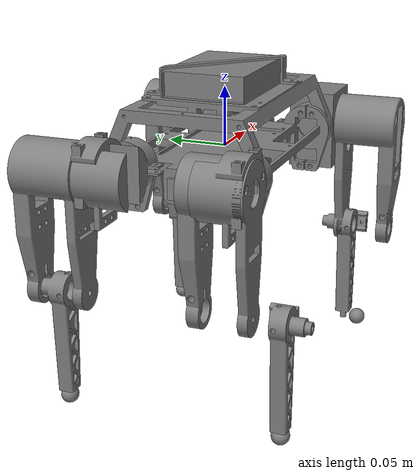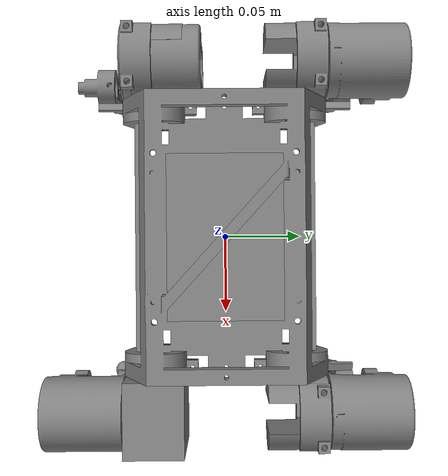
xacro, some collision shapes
<?xml version="1.0"?>
<robot name="qronk" xmlns:xacro="http://www.ros.org/wiki/xacro">

    <link name="base_link" />

    <xacro:include filename="common_properties.xacro" />

    <xacro:include filename="chassis.xacro" />

    <xacro:include filename="leg_FR.xacro" />
    <xacro:include filename="leg_FL.xacro" />
    <xacro:include filename="leg_BR.xacro" />
    <xacro:include filename="leg_BL.xacro" />

    <xacro:include filename="qronk_gazebo.xacro" />

</robot>

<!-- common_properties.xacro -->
<robot xmlns:xacro="http://www.ros.org/wiki/xacro">

    <!-- RVIZ COLORS -->

    <material name="red">
        <color rgba="0.5 0 0 1" />
    </material>

    <material name="green">
        <color rgba="0 0.5 0 1" />
    </material>

    <material name="blue">
        <color rgba="0 0 0.5 1" />
    </material>

    <material name="grey">
        <color rgba="0.5 0.5 0.5 1" />
    </material>

    <!-- XACRO INERTIA MACROS -->

    <xacro:macro name="box_inertia" params="m l w h xyz rpy">
        <inertial>
            <origin xyz="${xyz}" rpy="${rpy}" />
            <mass value="${m}" />
            <inertia ixx="${m * (l**2 + h**2) / 12.0}" ixy="0" ixz="0"
                iyy="${m * (w**2 + l**2) / 12.0}" iyz="0"
                izz="${m * (h**2 + w**2) / 12.0}" />
        </inertial>
    </xacro:macro>

    <xacro:macro name="sphere_inertia" params="m r xyz rpy">
        <inertial>
            <origin xyz="${xyz}" rpy="${rpy}" />
            <mass value="${m}" />
            <inertia ixx="${2 * m * r**2 / 5.0}" ixy="0" ixz="0"
                iyy="${2 * m * r**2 / 5.0}" iyz="0"
                izz="${2 * m * r**2 / 5.0}" />
        </inertial>
    </xacro:macro>

</robot>

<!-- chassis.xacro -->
<robot xmlns:xacro="http://www.ros.org/wiki/xacro">
<!--Updated all model xacros to be compatible with rvis and gazebo-->
    <joint name="base_chassis_joint" type="fixed">

        <parent link="base_link" />
        <child link="chassis_link" />
        <origin xyz="0 0 0" rpy="0 0 0" />

    </joint>

    <link name="chassis_link">

        <visual>
            <geometry>
                <mesh filename="file://$(find qronk_description)/meshes/chassis.stl"
                    scale="0.001 0.001 0.001" />
            </geometry>
            <origin xyz="0 0 0" rpy="0 0 0" />
            <material name="grey" />
        </visual>

        <collision>
            <geometry>
                <box size="0.185 0.136835 0.084144" />
            </geometry>
            <origin xyz="0 0 0.003928" rpy="0 0 0" />
        </collision>

        <xacro:box_inertia m="0.3" l="0.185" w="0.137" h="0.084"
            xyz="0 0 0.004" rpy="0 0 0" />

    </link>

    <joint name="chassis_battery_joint" type="fixed">

        <parent link="chassis_link" />
        <child link="battery_link" />
        <origin xyz="0 0 -0.0305" rpy="0 0 0" />

    </joint>

    <link name="battery_link">

        <visual>
            <geometry>
                <mesh filename="file://$(find qronk_description)/meshes/battery.stl"
                    scale="0.001 0.001 0.001" />
            </geometry>
            <origin xyz="-0.069 -0.0225 0" rpy="0 0 0" />
            <material name="grey" />
        </visual>

        <collision>
            <geometry>
                <box size="0.138 0.045 0.018" />
            </geometry>
            <origin xyz="0 0 0.009" rpy="0 0 0" />
        </collision>

        <xacro:box_inertia m="0.35" l="0.138" w="0.045" h="0.018"
            xyz="0 0 0.009" rpy="0 0 0" />

    </link>

    <joint name="chassis_raspberry_joint" type="fixed">

        <parent link="chassis_link" />
        <child link="raspberry_link" />
        <origin xyz="0 0 0.044" rpy="0 0 0" />

    </joint>

    <link name="raspberry_link">

        <visual>
            <geometry>
                <mesh filename="file://$(find qronk_description)/meshes/raspberry.stl"
                    scale="0.001 0.001 0.001" />
            </geometry>
            <origin xyz="-0.05 -0.035 0" rpy="0 0 0" />
            <material name="grey" />
        </visual>

        <collision>
            <geometry>
                <box size="0.1 0.07 0.025" />
            </geometry>
            <origin xyz="0 0 0.0125" rpy="0 0 0" />
        </collision>

        <xacro:box_inertia m="0.15" l="0.1" w="0.07" h="0.025"
            xyz="0 0 0.0125" rpy="0 0 0" />

    </link>

</robot>

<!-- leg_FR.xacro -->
<robot xmlns:xacro="http://www.ros.org/wiki/xacro">

    <joint name="chassis_shoulder_FR_joint" type="revolute">

        <parent link="chassis_link" />
        <child link="shoulder_FR_link" />
        <origin xyz="0.0885 -0.047417 0.000052" rpy="0 0 0" />
        <axis xyz="1 0 0" />
        <limit lower="${-pi}" upper="${pi}" effort="100" velocity="100" />

    </joint>

    <link name="shoulder_FR_link">

        <visual>
            <geometry>
                <mesh filename="file://$(find qronk_description)/meshes/shoulder_FR.stl"
                    scale="0.001 0.001 0.001" />
            </geometry>
            <origin xyz="0 0 0" rpy="0 0 0" />
            <material name="grey" />
        </visual>

        <collision>
            <geometry>
                <box size="0.05 0.04 0.068" />
            </geometry>
            <origin xyz="0.03 0 -0.005" rpy="0 0 0" />
        </collision>

        <xacro:box_inertia m="0.1" l="0.05" w="0.04" h="0.068"
            xyz="0.03 0 -0.005" rpy="0 0 0" />

    </link>

    <joint name="shoulder_upper_leg_FR_joint" type="revolute">

        <parent link="shoulder_FR_link" />
        <child link="upper_leg_FR_link" />
        <origin xyz="0.03 -0.0214 -0.00002" rpy="0 0 0" />
        <axis xyz="0 1 0" />
        <limit lower="${-pi}" upper="${pi}" effort="100" velocity="100" />

    </joint>

    <link name="upper_leg_FR_link">

        <visual>
            <geometry>
                <mesh filename="file://$(find qronk_description)//meshes/upper_leg_FR.stl"
                    scale="0.001 0.001 0.001" />
            </geometry>
            <origin xyz="0 0 0" rpy="0 0 0" />
            <material name="grey" />
        </visual>

        <collision>
            <geometry>
                <box size="0.05 0.0532 0.137" />
            </geometry>
            <origin xyz="0 -0.0266 -0.0435" rpy="0 0 0" />
        </collision>

        <xacro:box_inertia m="0.1" l="0.05" w="0.0532" h="0.0137"
            xyz="0 -0.0266 -0.0435" rpy="0 0 0" />

    </link>

    <joint name="upper_leg_lower_leg_FR_joint" type="revolute">

        <parent link="upper_leg_FR_link" />
        <child link="lower_leg_FR_link" />
        <origin xyz="0 -0.016349 -0.098459" rpy="0 0 0" />
        <axis xyz="0 1 0" />
        <limit lower="${-pi}" upper="${pi}" effort="100" velocity="100" />

    </joint>

    <link name="lower_leg_FR_link">

        <visual>
            <geometry>
                <mesh filename="file://$(find qronk_description)//meshes/lower_leg_FR.stl"
                    scale="0.001 0.001 0.001" />
            </geometry>
            <origin xyz="0 0 0" rpy="0 0 0" />
            <material name="grey" />
        </visual>

        <collision>
            <geometry>
                <box size="0.028 0.0134 0.102" />
            </geometry>
            <origin xyz="0 -0.0067 -0.037" rpy="0 0 0" />
        </collision>

        <xacro:box_inertia m="0.1" l="0.028" w="0.0134" h="0.102"
            xyz="0 -0.0067 -0.037" rpy="0 0 0" />

    </link>

    <joint name="lower_leg_foot_FR_joint" type="fixed">

        <parent link="lower_leg_FR_link" />
        <child link="foot_FR_link" />
        <origin xyz="0 -0.0066835 -0.09416" rpy="0 0 0" />

    </joint>

    <link name="foot_FR_link">

        <visual>
            <geometry>
                <sphere radius="0.0075" />
            </geometry>
            <origin xyz="0 0 0" rpy="0 0 0" />
            <material name="grey" />
        </visual>

        <collision>
            <geometry>
                <sphere radius="0.0075" />
            </geometry>
            <origin xyz="0 0 0" rpy="0 0 0" />
        </collision>

        <xacro:sphere_inertia m="0.05" r="0.0075"
            xyz="0 0 0" rpy="0 0 0" />

    </link>

</robot>

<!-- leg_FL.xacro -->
<robot xmlns:xacro="http://www.ros.org/wiki/xacro">

    <joint name="chassis_shoulder_FL_joint" type="revolute">

        <parent link="chassis_link" />
        <child link="shoulder_FL_link" />
        <origin xyz="0.0885 0.047417 0.000052" rpy="0 0 0" />
        <axis xyz="1 0 0" />
        <limit lower="${-pi}" upper="${pi}" effort="100" velocity="100" />

    </joint>

    <link name="shoulder_FL_link">

        <visual>
            <geometry>
                <mesh filename="file://$(find qronk_description)/meshes/shoulder_FL.stl"
                    scale="0.001 0.001 0.001" />
            </geometry>
            <origin xyz="0 0 0" rpy="0 0 0" />
            <material name="grey" />
        </visual>

        <collision>
            <geometry>
                <box size="0.05 0.04 0.068" />
            </geometry>
            <origin xyz="0.03 -0 -0.005" rpy="0 0 0" />
        </collision>

        <xacro:box_inertia m="0.1" l="0.05" w="0.04" h="0.068"
            xyz="0.03 -0 -0.005" rpy="0 0 0" />

    </link>

    <joint name="shoulder_upper_leg_FL_joint" type="revolute">

        <parent link="shoulder_FL_link" />
        <child link="upper_leg_FL_link" />
        <origin xyz="0.03 0.0214 -0.00002" rpy="0 0 0" />
        <axis xyz="0 1 0" />
        <limit lower="${-pi}" upper="${pi}" effort="100" velocity="100" />

    </joint>

    <link name="upper_leg_FL_link">

        <visual>
            <geometry>
                <mesh filename="file://$(find qronk_description)/meshes/upper_leg_FL.stl"
                    scale="0.001 0.001 0.001" />
            </geometry>
            <origin xyz="0 0 0" rpy="0 0 0" />
            <material name="grey" />
        </visual>

        <collision>
            <geometry>
                <box size="0.05 0.0532 0.137" />
            </geometry>
            <origin xyz="0 0.0266 -0.0435" rpy="0 0 0" />
        </collision>

        <xacro:box_inertia m="0.1" l="0.05" w="0.0532" h="0.0137"
            xyz="0 0.0266 -0.0435" rpy="0 0 0" />

    </link>

    <joint name="upper_leg_lower_leg_FL_joint" type="revolute">

        <parent link="upper_leg_FL_link" />
        <child link="lower_leg_FL_link" />
        <origin xyz="0 0.016349 -0.098459" rpy="0 0 0" />
        <axis xyz="0 1 0" />
        <limit lower="${-pi}" upper="${pi}" effort="100" velocity="100" />

    </joint>

    <link name="lower_leg_FL_link">

        <visual>
            <geometry>
                <mesh filename="file://$(find qronk_description)/meshes/lower_leg_FL.stl"
                    scale="0.001 0.001 0.001" />
            </geometry>
            <origin xyz="0 0 0" rpy="0 0 0" />
            <material name="grey" />
        </visual>

        <collision>
            <geometry>
                <box size="0.028 0.0134 0.102" />
            </geometry>
            <origin xyz="0 0.0067 -0.037" rpy="0 0 0" />
        </collision>

        <xacro:box_inertia m="0.1" l="0.028" w="0.0134" h="0.102"
            xyz="0 0.0067 -0.037" rpy="0 0 0" />

    </link>

    <joint name="lower_leg_foot_FL_joint" type="fixed">

        <parent link="lower_leg_FL_link" />
        <child link="foot_FL_link" />
        <origin xyz="0 0.0066835 -0.09416" rpy="0 0 0" />

    </joint>

    <link name="foot_FL_link">

        <visual>
            <geometry>
                <sphere radius="0.0075" />
            </geometry>
            <origin xyz="0 0 0" rpy="0 0 0" />
            <material name="grey" />
        </visual>

        <collision>
            <geometry>
                <sphere radius="0.0075" />
            </geometry>
            <origin xyz="0 0 0" rpy="0 0 0" />
        </collision>

        <xacro:sphere_inertia m="0.05" r="0.0075"
            xyz="0 0 0" rpy="0 0 0" />

    </link>

</robot>

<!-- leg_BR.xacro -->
<robot xmlns:xacro="http://www.ros.org/wiki/xacro">

    <joint name="chassis_shoulder_BR_joint" type="revolute">

        <parent link="chassis_link" />
        <child link="shoulder_BR_link" />
        <origin xyz="-0.0885 -0.047417 0.000052" rpy="0 0 0" />
        <axis xyz="1 0 0" />
        <limit lower="${-pi}" upper="${pi}" effort="100" velocity="100" />

    </joint>

    <link name="shoulder_BR_link">

        <visual>
            <geometry>
                <mesh filename="file://$(find qronk_description)/meshes/shoulder_BR.stl"
                    scale="0.001 0.001 0.001" />
            </geometry>
            <origin xyz="0 0 0" rpy="0 0 0" />
            <material name="grey" />
        </visual>

        <collision>
            <geometry>
                <box size="0.05 0.04 0.068" />
            </geometry>
            <origin xyz="-0.03 0 -0.005" rpy="0 0 0" />
        </collision>

        <xacro:box_inertia m="0.1" l="0.05" w="0.04" h="0.068"
            xyz="-0.03 0 -0.005" rpy="0 0 0" />

    </link>

    <joint name="shoulder_upper_leg_BR_joint" type="revolute">

        <parent link="shoulder_BR_link" />
        <child link="upper_leg_BR_link" />
        <origin xyz="-0.03 -0.0214 -0.00002" rpy="0 0 0" />
        <axis xyz="0 1 0" />
        <limit lower="${-pi}" upper="${pi}" effort="100" velocity="100" />

    </joint>

    <link name="upper_leg_BR_link">

        <visual>
            <geometry>
                <mesh filename="file://$(find qronk_description)/meshes/upper_leg_BR.stl"
                    scale="0.001 0.001 0.001" />
            </geometry>
            <origin xyz="0 0 0" rpy="0 0 0" />
            <material name="grey" />
        </visual>

        <collision>
            <geometry>
                <box size="0.05 0.0532 0.137" />
            </geometry>
            <origin xyz="-0 -0.0266 -0.0435" rpy="0 0 0" />
        </collision>

        <xacro:box_inertia m="0.1" l="0.05" w="0.0532" h="0.0137"
            xyz="-0 -0.0266 -0.0435" rpy="0 0 0" />

    </link>

    <joint name="upper_leg_lower_leg_BR_joint" type="revolute">

        <parent link="upper_leg_BR_link" />
        <child link="lower_leg_BR_link" />
        <origin xyz="-0 -0.016349 -0.098459" rpy="0 0 0" />
        <axis xyz="0 1 0" />
        <limit lower="${-pi}" upper="${pi}" effort="100" velocity="100" />

    </joint>

    <link name="lower_leg_BR_link">

        <visual>
            <geometry>
                <mesh filename="file://$(find qronk_description)/meshes/lower_leg_BR.stl"
                    scale="0.001 0.001 0.001" />
            </geometry>
            <origin xyz="0 0 0" rpy="0 0 0" />
            <material name="grey" />
        </visual>

        <collision>
            <geometry>
                <box size="0.028 0.0134 0.102" />
            </geometry>
            <origin xyz="-0 -0.0067 -0.037" rpy="0 0 0" />
        </collision>

        <xacro:box_inertia m="0.1" l="0.028" w="0.0134" h="0.102"
            xyz="-0 -0.0067 -0.037" rpy="0 0 0" />

    </link>

    <joint name="lower_leg_foot_BR_joint" type="fixed">

        <parent link="lower_leg_BR_link" />
        <child link="foot_BR_link" />
        <origin xyz="-0 -0.0066835 -0.09416" rpy="0 0 0" />

    </joint>

    <link name="foot_BR_link">

        <visual>
            <geometry>
                <sphere radius="0.0075" />
            </geometry>
            <origin xyz="0 0 0" rpy="0 0 0" />
            <material name="grey" />
        </visual>

        <collision>
            <geometry>
                <sphere radius="0.0075" />
            </geometry>
            <origin xyz="0 0 0" rpy="0 0 0" />
        </collision>

        <xacro:sphere_inertia m="0.05" r="0.0075"
            xyz="0 0 0" rpy="0 0 0" />

    </link>

</robot>

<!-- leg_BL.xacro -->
<robot xmlns:xacro="http://www.ros.org/wiki/xacro">

    <joint name="chassis_shoulder_BL_joint" type="revolute">

        <parent link="chassis_link" />
        <child link="shoulder_BL_link" />
        <origin xyz="-0.0885 0.047417 0.000052" rpy="0 0 0" />
        <axis xyz="1 0 0" />
        <limit lower="${-pi}" upper="${pi}" effort="100" velocity="100" />

    </joint>

    <link name="shoulder_BL_link">

        <visual>
            <geometry>
                <mesh filename="file://$(find qronk_description)/meshes/shoulder_BL.stl"
                    scale="0.001 0.001 0.001" />
            </geometry>
            <origin xyz="0 0 0" rpy="0 0 0" />
            <material name="grey" />
        </visual>

        <collision>
            <geometry>
                <box size="0.05 0.04 0.068" />
            </geometry>
            <origin xyz="-0.03 -0 -0.005" rpy="0 0 0" />
        </collision>

        <xacro:box_inertia m="0.1" l="0.05" w="0.04" h="0.068"
            xyz="-0.03 -0 -0.005" rpy="0 0 0" />

    </link>

    <joint name="shoulder_upper_leg_BL_joint" type="revolute">

        <parent link="shoulder_BL_link" />
        <child link="upper_leg_BL_link" />
        <origin xyz="-0.03 0.0214 -0.00002" rpy="0 0 0" />
        <axis xyz="0 1 0" />
        <limit lower="${-pi}" upper="${pi}" effort="100" velocity="100" />

    </joint>

    <link name="upper_leg_BL_link">

        <visual>
            <geometry>
                <mesh filename="file://$(find qronk_description)/meshes/upper_leg_BL.stl"
                    scale="0.001 0.001 0.001" />
            </geometry>
            <origin xyz="0 0 0" rpy="0 0 0" />
            <material name="grey" />
        </visual>

        <collision>
            <geometry>
                <box size="0.05 0.0532 0.137" />
            </geometry>
            <origin xyz="-0 0.0266 -0.0435" rpy="0 0 0" />
        </collision>

        <xacro:box_inertia m="0.1" l="0.05" w="0.0532" h="0.0137"
            xyz="-0 0.0266 -0.0435" rpy="0 0 0" />

    </link>

    <joint name="upper_leg_lower_leg_BL_joint" type="revolute">

        <parent link="upper_leg_BL_link" />
        <child link="lower_leg_BL_link" />
        <origin xyz="-0 0.016349 -0.098459" rpy="0 0 0" />
        <axis xyz="0 1 0" />
        <limit lower="${-pi}" upper="${pi}" effort="100" velocity="100" />

    </joint>

    <link name="lower_leg_BL_link">

        <visual>
            <geometry>
                <mesh filename="file://$(find qronk_description)/meshes/lower_leg_BL.stl"
                    scale="0.001 0.001 0.001" />
            </geometry>
            <origin xyz="0 0 0" rpy="0 0 0" />
            <material name="grey" />
        </visual>

        <collision>
            <geometry>
                <box size="0.028 0.0134 0.102" />
            </geometry>
            <origin xyz="-0 0.0067 -0.037" rpy="0 0 0" />
        </collision>

        <xacro:box_inertia m="0.1" l="0.028" w="0.0134" h="0.102"
            xyz="-0 0.0067 -0.037" rpy="0 0 0" />

    </link>

    <joint name="lower_leg_foot_BL_joint" type="fixed">

        <parent link="lower_leg_BL_link" />
        <child link="foot_BL_link" />
        <origin xyz="-0 0.0066835 -0.09416" rpy="0 0 0" />

    </joint>

    <link name="foot_BL_link">

        <visual>
            <geometry>
                <sphere radius="0.0075" />
            </geometry>
            <origin xyz="0 0 0" rpy="0 0 0" />
            <material name="grey" />
        </visual>

        <collision>
            <geometry>
                <sphere radius="0.0075" />
            </geometry>
            <origin xyz="0 0 0" rpy="0 0 0" />
        </collision>

        <xacro:sphere_inertia m="0.05" r="0.0075"
            xyz="0 0 0" rpy="0 0 0" />

    </link>

</robot>
